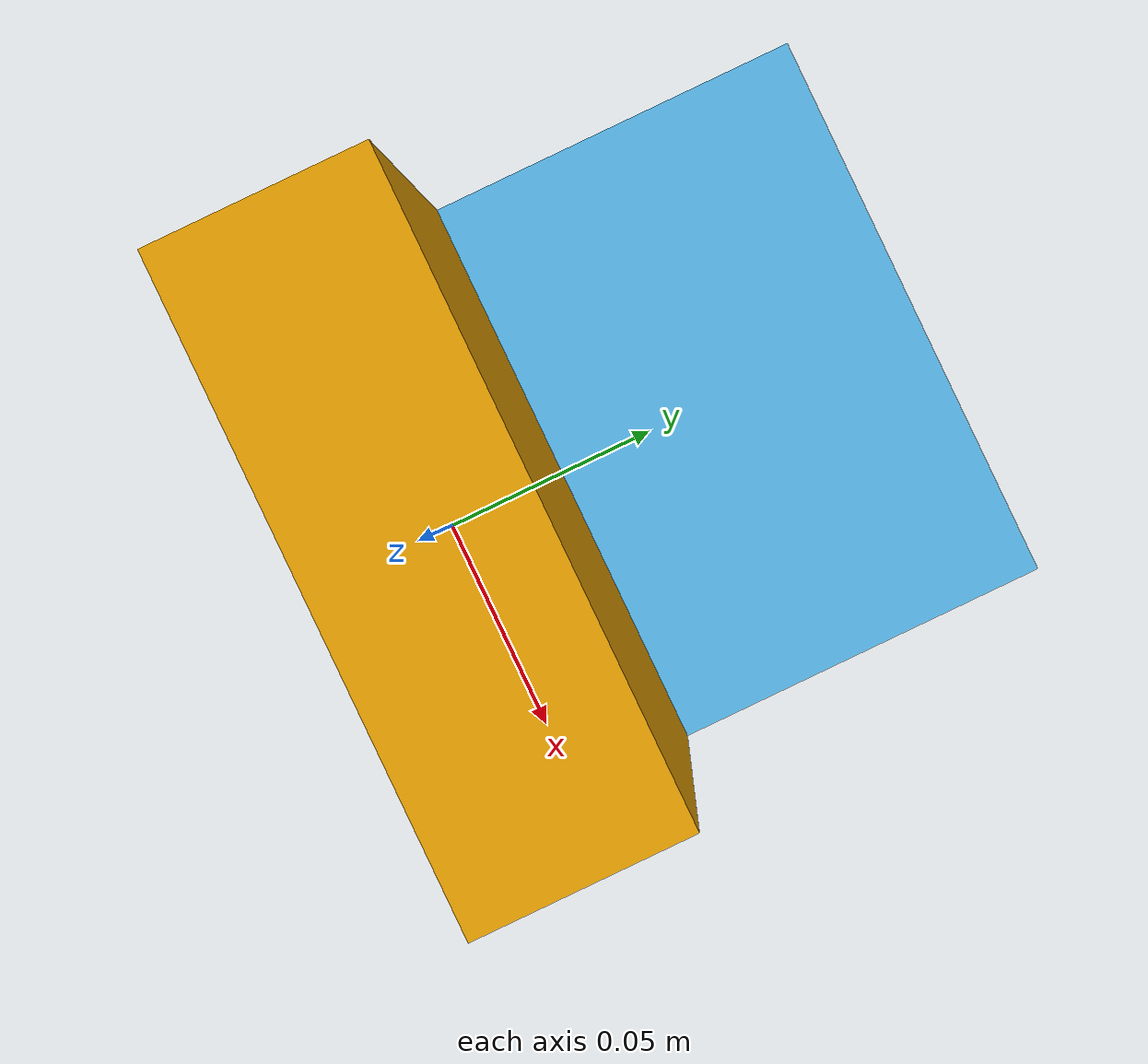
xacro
<?xml version="1.0" ?>
<robot name="dock" xmlns:xacro="http://ros.org/wiki/xacro">
  <xacro:include filename="$(find ca_description)/urdf/common_properties.xacro" />
  <xacro:macro name="dock" params="width">
    <link name='back'>
      <visual name='visual'>
        <geometry>
          <box size="${width} ${width/3} ${width * 2/3}"/>
        </geometry>
      </visual>
      <collision name='collision'>
        <geometry>
          <box size="${width} ${width/3} ${width * 2/3}"/>
        </geometry>
      </collision>
      <xacro:inertial_cuboid_with_pose mass="0.15" x_length="${width}"
          y_length="${width/3}" z_length="${width * 2/3}" >
        <origin xyz="0 0 0" />
      </xacro:inertial_cuboid_with_pose>
    </link>
    <link name='link'>
      <visual name='visual'>
        <origin xyz="0 ${width/2 - width/6} ${-(width * 2/3)/2}" />
        <geometry>
          <box size="${width} ${width} 0.01"/>
        </geometry>
      </visual>
      <collision name='collision'>
        <origin xyz="0 ${width/2 - width/6} ${-(width * 2/3)/2}" />
        <geometry>
          <box size="${width} ${width} 0.01"/>
        </geometry>
      </collision>
      <xacro:inertial_cuboid_with_pose mass="0.05" x_length="${width}"
          y_length="${width}" z_length="0.01" >
        <origin xyz="0 ${width/2 - width/6} ${-(width * 2/3)/2}" />
      </xacro:inertial_cuboid_with_pose>
    </link>
    <joint name='glue' type='fixed'>
      <parent link="back" />
      <child link="link" />
    </joint>
  </xacro:macro>
  <xacro:dock width="0.15">
  </xacro:dock>
</robot>

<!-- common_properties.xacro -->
<robot xmlns:xacro="http://ros.org/wiki/xacro">

  <xacro:macro name="inertial_cuboid" params="mass x_length y_length z_length">
    <inertial>
      <mass value="${mass}" />
      <origin xyz="0 0 0" />
      <inertia ixx="${(1/12) * mass * (y_length*y_length + z_length*z_length)}" ixy="0.0" ixz="0.0"
               iyy="${(1/12) * mass * (x_length*x_length + z_length*z_length)}" iyz="0.0"
               izz="${(1/12) * mass * (x_length*x_length + y_length*y_length)}" />
    </inertial>
  </xacro:macro>

  <xacro:macro name="dummy_inertia">
    <xacro:inertial_cuboid mass="0.001" x_length="0.001" y_length="0.001" z_length="0.001"/>
  </xacro:macro>

  <xacro:macro name="inertial_cuboid_with_pose" params="mass x_length y_length z_length *origin">
    <inertial>
      <xacro:insert_block name="origin"/>
      <mass value="${mass}" />
      <inertia ixx="${(1/12) * mass * (y_length*y_length + z_length*z_length)}" ixy="0.0" ixz="0.0"
               iyy="${(1/12) * mass * (x_length*x_length + z_length*z_length)}" iyz="0.0"
               izz="${(1/12) * mass * (x_length*x_length + y_length*y_length)}" />
    </inertial>
  </xacro:macro>

  <xacro:macro name="inertial_cylinder" params="mass radius length">
    <inertial>
      <mass value="${mass}"/>
      <origin xyz="0 0 0" />
      <inertia ixx="${(1/12) * mass * (3*radius*radius + length*length)}" ixy="0.0" ixz="0.0"
               iyy="${(1/12) * mass * (3*radius*radius + length*length)}" iyz="0.0"
               izz="${(1/2) * mass * (radius*radius)}" />
    </inertial>
  </xacro:macro>

  <xacro:macro name="inertial_cylinder_with_pose" params="mass radius length *origin">
    <inertial>
      <xacro:insert_block name="origin"/>
      <mass value="${mass}" />
      <inertia ixx="${(1/12) * mass * (3*radius*radius + length*length)}" ixy="0.0" ixz="0.0"
	             iyy="${(1/12) * mass * (3*radius*radius + length*length)}" iyz="0.0"
	             izz="${(1/2) * mass * (radius*radius)}" />
    </inertial>
  </xacro:macro>

  <xacro:macro name="inertial_sphere" params="mass diameter">
    <inertial>
      <mass value="${mass}" />
      <origin xyz="0 0 0" />
      <inertia ixx="${(2/5) * mass * ( (diameter*0.5) * (diameter*0.5) )}" ixy="0.0" ixz="0.0"
	             iyy="${(2/5) * mass * ( (diameter*0.5) * (diameter*0.5) )}" iyz="0.0"
	             izz="${(2/5) * mass * ( (diameter*0.5) * (diameter*0.5) )}" />
    </inertial>
  </xacro:macro>

  <xacro:macro name="inertial_sphere_with_pose" params="mass diameter *origin">
    <inertial>
      <xacro:insert_block name="origin"/>
      <mass value="${mass}" />
      <inertia ixx="${(2/5) * mass * ( (diameter*0.5) * (diameter*0.5) )}" ixy="0.0" ixz="0.0"
	             iyy="${(2/5) * mass * ( (diameter*0.5) * (diameter*0.5) )}" iyz="0.0"
	             izz="${(2/5) * mass * ( (diameter*0.5) * (diameter*0.5) )}" />
    </inertial>
  </xacro:macro>

  <xacro:property name="cm_to_m" value="${1./100.}"/>
  <xacro:property name="in_to_m" value="0.0254"/>

</robot>
